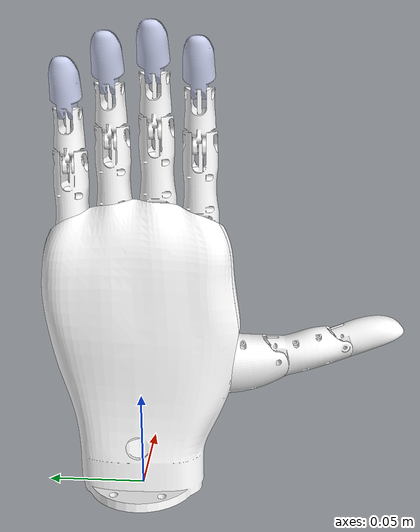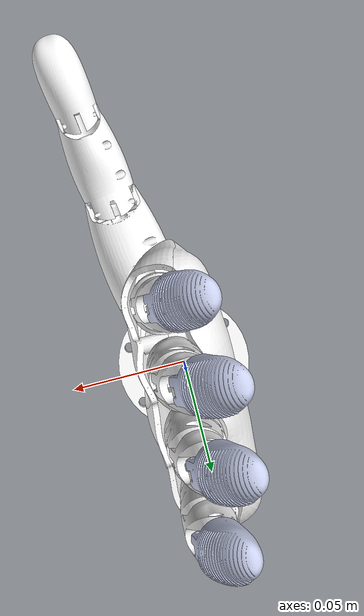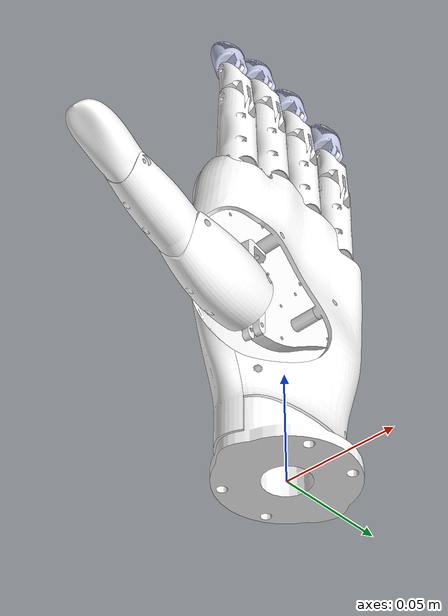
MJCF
<?xml version='1.0' encoding='utf-8'?>
<mujoco model="left">
  <compiler angle="radian" />

  <asset>
    <mesh name="L_wrist" content_type="model/stl" file="/home/xiaoyi/Robotpianist/third_party/realman_linkhand/left/urdf/../meshes/wrist.STL" />
    <mesh name="L_palm" content_type="model/stl" file="/home/xiaoyi/Robotpianist/third_party/realman_linkhand/left/urdf/../meshes/palm.STL" />

    <mesh name="L_FF0" content_type="model/stl" file="/home/xiaoyi/Robotpianist/third_party/realman_linkhand/left/urdf/../meshes/FF0.STL" />
    <mesh name="L_FF1" content_type="model/stl" file="/home/xiaoyi/Robotpianist/third_party/realman_linkhand/left/urdf/../meshes/FF1.STL" />
    <mesh name="L_FF2" content_type="model/stl" file="/home/xiaoyi/Robotpianist/third_party/realman_linkhand/left/urdf/../meshes/FF2.STL" />

    <mesh name="L_MF0" content_type="model/stl" file="/home/xiaoyi/Robotpianist/third_party/realman_linkhand/left/urdf/../meshes/MF0.STL" />
    <mesh name="L_MF1" content_type="model/stl" file="/home/xiaoyi/Robotpianist/third_party/realman_linkhand/left/urdf/../meshes/MF1.STL" />
    <mesh name="L_MF2" content_type="model/stl" file="/home/xiaoyi/Robotpianist/third_party/realman_linkhand/left/urdf/../meshes/MF2.STL" />

    <mesh name="L_RF0" content_type="model/stl" file="/home/xiaoyi/Robotpianist/third_party/realman_linkhand/left/urdf/../meshes/RF0.STL" />
    <mesh name="L_RF1" content_type="model/stl" file="/home/xiaoyi/Robotpianist/third_party/realman_linkhand/left/urdf/../meshes/RF1.STL" />
    <mesh name="L_RF2" content_type="model/stl" file="/home/xiaoyi/Robotpianist/third_party/realman_linkhand/left/urdf/../meshes/RF2.STL" />

    <mesh name="L_LF0" content_type="model/stl" file="/home/xiaoyi/Robotpianist/third_party/realman_linkhand/left/urdf/../meshes/LF0.STL" />
    <mesh name="L_LF1" content_type="model/stl" file="/home/xiaoyi/Robotpianist/third_party/realman_linkhand/left/urdf/../meshes/LF1.STL" />
    <mesh name="L_LF2" content_type="model/stl" file="/home/xiaoyi/Robotpianist/third_party/realman_linkhand/left/urdf/../meshes/LF2.STL" />

    <mesh name="L_TH0" content_type="model/stl" file="/home/xiaoyi/Robotpianist/third_party/realman_linkhand/left/urdf/../meshes/TH0.STL" />
    <mesh name="L_TH1" content_type="model/stl" file="/home/xiaoyi/Robotpianist/third_party/realman_linkhand/left/urdf/../meshes/TH1.STL" />
    <mesh name="L_TH2" content_type="model/stl" file="/home/xiaoyi/Robotpianist/third_party/realman_linkhand/left/urdf/../meshes/TH2.STL" />
    <mesh name="L_TH3" content_type="model/stl" file="/home/xiaoyi/Robotpianist/third_party/realman_linkhand/left/urdf/../meshes/TH3.STL" />
  </asset>

  <worldbody>

    <body name="lh_forearm">
      <joint name="forearm_tx" type="slide" axis="1 0 0" range="-0.25 0.25" damping="5" />
      <joint name="forearm_ty" type="slide" axis="0 1 0" range="-0.15 0.35" damping="5" />

      <body name="L_wrist" quat="0.707388 0 0 -0.706825">
        <inertial pos="0.00054177 -0.0072101 0.058151" quat="0.707332 0.0391421 0.043182 0.704474" mass="0.075667" diaginertia="7.41777e-05 4.62188e-05 3.65825e-05" />
        <geom type="mesh" rgba="1 1 1 1" mesh="L_wrist" />

        <body name="L_palm" pos="0.006962 0.012987 0.083048">
          <inertial pos="-0.011999 -0.0025212 0.0019088" quat="0.703234 0.119896 0.109988 0.692091" mass="0.015236" diaginertia="2.90929e-05 2.05915e-05 9.15163e-06" />
          <geom type="mesh" rgba="1 1 1 1" mesh="L_palm" />

          <body name="L_FF0" pos="0.02349 -0.0082497 0.055921">
            <inertial pos="0.00024926 -0.0018876 0.022916" quat="0.707008 0.00415035 -0.00263507 0.707189" mass="0.0037851" diaginertia="8.3103e-07 7.86073e-07 1.78807e-07" />
            <joint name="L_FFJ0" pos="0 0 0" axis="-1 0 0" range="0 1.39" />
            <geom type="mesh" rgba="1 1 1 1" mesh="L_FF0" />

            <body name="L_FF1" pos="0.0003 -0.0032121 0.03859">
              <inertial pos="-6.287e-06 0.00050674 0.012301" quat="0.703252 0.0585771 -0.059339 0.706034" mass="0.0022151" diaginertia="1.38131e-07 1.3295e-07 5.51566e-08" />
              <joint name="L_FFJ1" pos="0 0 0" axis="-1 0 0" range="-0.07 1.5708" />
              <geom type="mesh" rgba="1 1 1 1" mesh="L_FF1" />

              <body name="lh_ffdistal" pos="0 -0.0033672 0.024281">
                <inertial pos="1.9861e-06 -0.0013961 0.012606" quat="0.954075 0.299445 0.00228332 -0.00822171" mass="0.0029562" diaginertia="1.1129e-07 1.10365e-07 3.57145e-08" />
                <joint name="L_FFJ2" pos="0 0 0" axis="-1 0 0" range="-0.07 1.127" />
                <geom type="mesh" rgba="0.79216 0.81961 0.93333 1" mesh="L_FF2" />
              </body>
            </body>
          </body>

          <body name="L_MF0" pos="0.0033546 -0.0082497 0.06289">
            <inertial pos="0.00024034 -0.0021897 0.022893" quat="0.706961 0.00893919 -0.00742496 0.707157" mass="0.0037851" diaginertia="8.31079e-07 7.86073e-07 1.78758e-07" />
            <joint name="L_MFJ0" pos="0 0 0" axis="-1 0 0" range="0 1.39" />
            <geom type="mesh" rgba="1 1 1 1" mesh="L_MF0" />

            <body name="L_MF1" pos="0.0003 -0.0037267 0.038543">
              <inertial pos="-6.2871e-06 0.00023456 0.012311" quat="0.702558 0.066412 -0.0672044 0.705327" mass="0.0022151" diaginertia="1.38137e-07 1.3295e-07 5.51481e-08" />
              <joint name="L_MFJ1" pos="0 0 0" axis="-1 0 0" range="-0.07 1.5708" />
              <geom type="mesh" rgba="1 1 1 1" mesh="L_MF1" />

              <body name="lh_mfdistal" pos="0 -0.0039045 0.0242">
                <inertial pos="1.9738e-06 -0.0017379 0.012564" quat="0.949923 0.31237 0.00236937 -0.00811057" mass="0.0029562" diaginertia="1.1129e-07 1.10367e-07 3.57147e-08" />
                <joint name="L_MFJ2" pos="0 0 0" axis="-1 0 0" range="-0.07 1.127" />
                <geom type="mesh" rgba="0.79216 0.81961 0.93333 1" mesh="L_MF2" />
              </body>
            </body>
          </body>

          <body name="L_RF0" pos="-0.017053 -0.0082497 0.057909">
            <inertial pos="-0.00010074 -0.0018919 0.022916" quat="0.707007 0.00421754 -0.00270229 0.707189" mass="0.0037851" diaginertia="8.31032e-07 7.86073e-07 1.78805e-07" />
            <joint name="L_RFJ0" pos="0 0 0" axis="-1 0 0" range="0 1.39" />
            <geom type="mesh" rgba="1 1 1 1" mesh="L_RF0" />

            <body name="L_RF1" pos="-5e-05 -0.0032194 0.038589">
              <inertial pos="-6.287e-06 0.0005029 0.012302" quat="0.703242 0.0586904 -0.0594527 0.706025" mass="0.0022151" diaginertia="1.3813e-07 1.3295e-07 5.51568e-08" />
              <joint name="L_RFJ1" pos="0 0 0" axis="-1 0 0" range="-0.07 1.5708" />
              <geom type="mesh" rgba="1 1 1 1" mesh="L_RF1" />

              <body name="lh_rfdistal" pos="0 -0.0033748 0.02428">
                <inertial pos="1.9838e-06 -0.001401 0.012606" quat="0.954019 0.299626 0.00228037 -0.00820609" mass="0.0029562" diaginertia="1.1129e-07 1.10366e-07 3.57148e-08" />
                <joint name="L_RFJ2" pos="0 0 0" axis="-1 0 0" range="-0.07 1.127" />
                <geom type="mesh" rgba="0.79216 0.81961 0.93333 1" mesh="L_RF2" />
              </body>
            </body>
          </body>

          <body name="L_LF0" pos="-0.037785 -0.0082497 0.045842">
            <inertial pos="-9.6987e-06 -0.00091388 0.022964" quat="0.706936 -0.0112607 0.0127788 0.707072" mass="0.0037851" diaginertia="8.30873e-07 7.86073e-07 1.78964e-07" />
            <joint name="L_LFJ0" pos="0 0 0" axis="-1 0 0" range="0 1.39" />
            <geom type="mesh" rgba="1 1 1 1" mesh="L_LF0" />

            <body name="L_LF1" pos="5e-05 -0.0015525 0.038692">
              <inertial pos="-6.2874e-06 0.0013967 0.012229" quat="0.704918 0.0328349 -0.0334952 0.707736" mass="0.0022151" diaginertia="1.38108e-07 1.3295e-07 5.51849e-08" />
              <joint name="L_LFJ1" pos="0 0 0" axis="-1 0 0" range="-0.07 1.5708" />
              <geom type="mesh" rgba="1 1 1 1" mesh="L_LF1" />

              <body name="lh_lfdistal" pos="0 -0.0015947 0.024461">
                <inertial pos="1.9978e-06 -0.00025841 0.012681" quat="0.966567 0.256258 0.00200979 -0.00869644" mass="0.0029562" diaginertia="1.1129e-07 1.10364e-07 3.57153e-08" />
                <joint name="L_LFJ2" pos="0 0 0" axis="-1 0 0" range="-0.07 1.127" />
                <geom type="mesh" rgba="0.79216 0.81961 0.93333 1" mesh="L_LF2" />
              </body>
            </body>
          </body>

          <body name="L_TH0" pos="0.015255 -0.0083497 0.0052814" quat="0.997884 0 0 0.0650241">
            <inertial pos="0.0047151 -4.0431e-06 -0.011967" quat="0.705151 0.0479733 0.0484046 0.705774" mass="0.0019231" diaginertia="2.6734e-07 2.58524e-07 3.00705e-08" />
            <joint name="L_THJ0" pos="0 0 0" axis="0 0 1" range="0 2.2" />
            <geom type="mesh" rgba="1 1 1 1" mesh="L_TH0" />

            <body name="L_TH1" pos="0.0075 0 -0.01705">
              <inertial pos="0.020295 6.5827e-05 -0.0050984" quat="0.491916 0.50754 0.517503 0.482299" mass="0.004331" diaginertia="1.14581e-06 1.11995e-06 6.31569e-07" />
              <joint name="L_THJ1" pos="0 0 0" axis="0 -1 0" range="0 0.7" />
              <geom type="mesh" rgba="1 1 1 1" mesh="L_TH1" />

              <body name="L_TH2" pos="0.038855 5e-05 -0.00060069">
                <inertial pos="0.015015 5.0093e-05 0.0018698" quat="0.529175 0.470148 0.51463 0.483829" mass="0.0028123" diaginertia="3.99611e-07 3.94557e-07 1.96382e-07" />
                <joint name="L_THJ2" pos="0 0 0" axis="0 -1 0" range="0 0.928" />
                <geom type="mesh" rgba="1 1 1 1" mesh="L_TH2" />

                <body name="lh_thdistal" pos="0.03403 -5e-05 0.0055613">
                  <inertial pos="0.013224 -2.6308e-06 0.0044986" quat="0.00302785 0.629217 0.00305169 0.777218" mass="0.0056262" diaginertia="4.54903e-07 4.4741e-07 1.85278e-07" />
                  <joint name="L_THJ3" pos="0 0 0" axis="0 -1 0" range="0 1.136" />
                  <geom type="mesh" rgba="1 1 1 1" mesh="L_TH3" />
                </body>
              </body>
            </body>
          </body>

        </body>
      </body>
    </body>
  </worldbody>

  <actuator>
    <position name="forearm_tx" joint="forearm_tx" kp="200" kv="10" forcerange="-50 50" ctrlrange="-0.25 0.25" />
    <position name="forearm_ty" joint="forearm_ty" kp="200" kv="10" forcerange="-50 50" ctrlrange="-0.15 0.35" />

    <position name="L_FFJ0_act" joint="L_FFJ0" kp="20" kv="2" forcerange="-0.6 0.6" ctrlrange="0 1.39" />
    <position name="L_FFJ1_act" joint="L_FFJ1" kp="20" kv="2" forcerange="-0.6 0.6" ctrlrange="-0.07 1.5708" />
    <position name="L_FFJ2_act" joint="L_FFJ2" kp="20" kv="2" forcerange="-0.6 0.6" ctrlrange="-0.07 1.127" />

    <position name="L_MFJ0_act" joint="L_MFJ0" kp="20" kv="2" forcerange="-0.6 0.6" ctrlrange="0 1.39" />
    <position name="L_MFJ1_act" joint="L_MFJ1" kp="20" kv="2" forcerange="-0.6 0.6" ctrlrange="-0.07 1.5708" />
    <position name="L_MFJ2_act" joint="L_MFJ2" kp="20" kv="2" forcerange="-0.6 0.6" ctrlrange="-0.07 1.127" />

    <position name="L_RFJ0_act" joint="L_RFJ0" kp="20" kv="2" forcerange="-0.6 0.6" ctrlrange="0 1.39" />
    <position name="L_RFJ1_act" joint="L_RFJ1" kp="20" kv="2" forcerange="-0.6 0.6" ctrlrange="-0.07 1.5708" />
    <position name="L_RFJ2_act" joint="L_RFJ2" kp="20" kv="2" forcerange="-0.6 0.6" ctrlrange="-0.07 1.127" />

    <position name="L_LFJ0_act" joint="L_LFJ0" kp="20" kv="2" forcerange="-0.6 0.6" ctrlrange="0 1.39" />
    <position name="L_LFJ1_act" joint="L_LFJ1" kp="20" kv="2" forcerange="-0.6 0.6" ctrlrange="-0.07 1.5708" />
    <position name="L_LFJ2_act" joint="L_LFJ2" kp="20" kv="2" forcerange="-0.6 0.6" ctrlrange="-0.07 1.127" />

    <position name="L_THJ0_act" joint="L_THJ0" kp="20" kv="2" forcerange="-0.6 0.6" ctrlrange="0 2.2" />
    <position name="L_THJ1_act" joint="L_THJ1" kp="20" kv="2" forcerange="-0.6 0.6" ctrlrange="0 0.7" />
    <position name="L_THJ2_act" joint="L_THJ2" kp="20" kv="2" forcerange="-0.6 0.6" ctrlrange="0 0.928" />
    <position name="L_THJ3_act" joint="L_THJ3" kp="20" kv="2" forcerange="-0.6 0.6" ctrlrange="0 1.136" />
  </actuator>
</mujoco>
